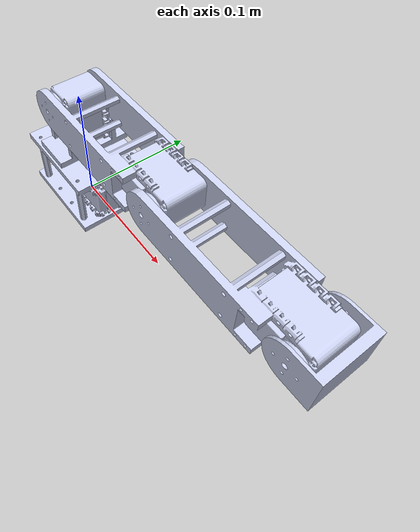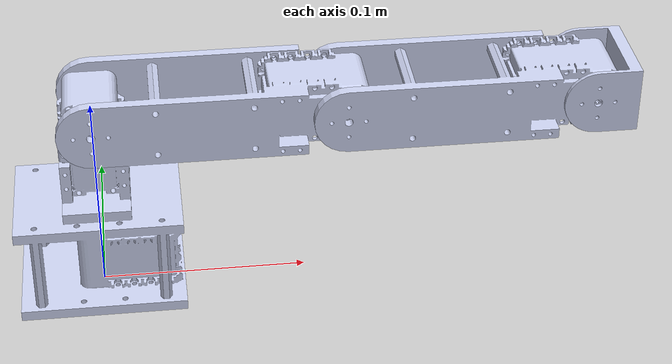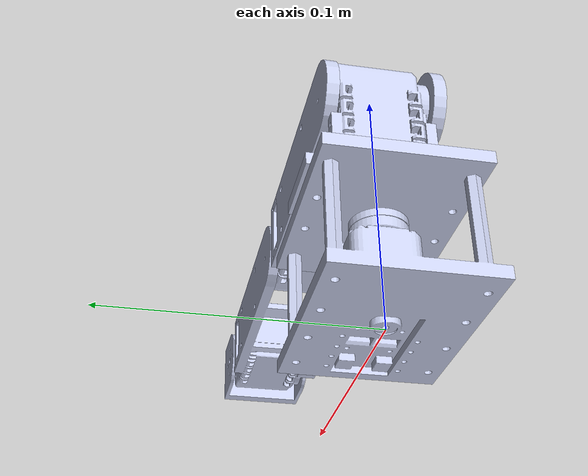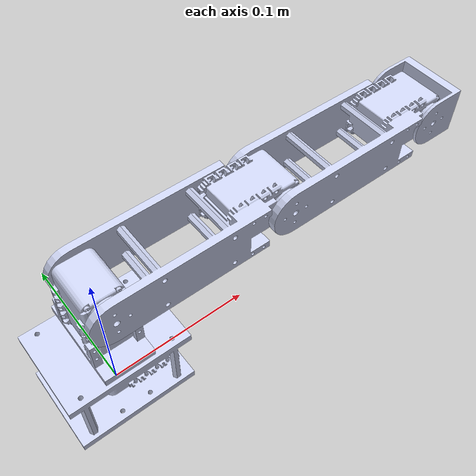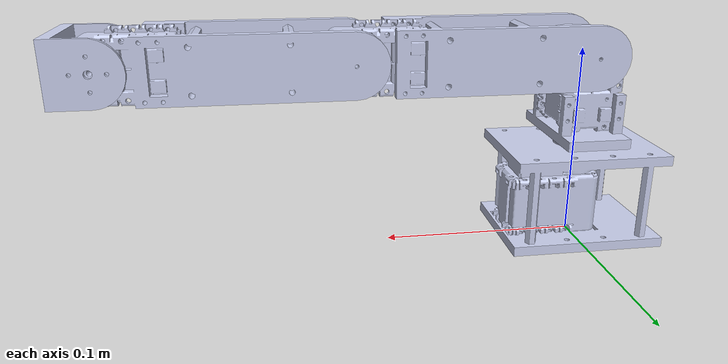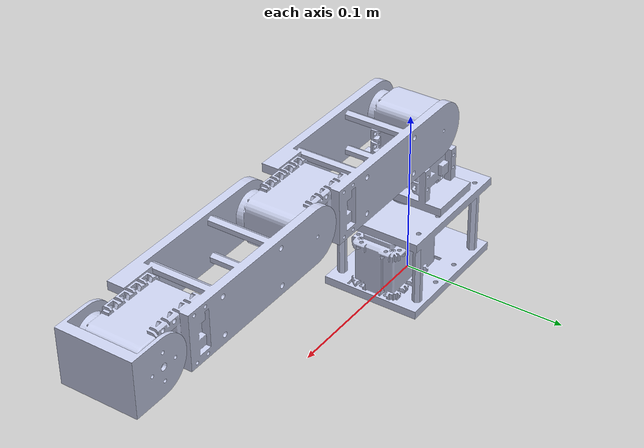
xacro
<?xml version="1.0"?>
<robot name="acps_bot" xmlns:xacro="http://ros.org/wiki/xacro">
  <xacro:include filename="$(find dynamixel_arm)/urdf/acps_bot.xacro" />
  <xacro:include filename="$(find dynamixel_arm)/urdf/acps_bot.ros2_control_gazebo.xacro" />

  <xacro:acps_bot/>

  <xacro:acps_bot_ros2_control_gazebo name="acps_bot_ros2_control_gazebo" />
</robot>

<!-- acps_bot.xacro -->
<robot xmlns:xacro="http://www.ros.org/wiki/xacro">
<xacro:macro name="acps_bot">
    <link name="world"/>
    <link
        name="base_link">
        <inertial>
        <origin
            xyz="0.0050632 -2.8932E-09 0.024787"
            rpy="0 0 0" />
        <mass
            value="0.090196" />
        <inertia
            ixx="1.7793E-05"
            ixy="-9.8445E-12"
            ixz="6.6333E-10"
            iyy="3.1931E-05"
            iyz="-6.3531E-13"
            izz="4.6413E-05" />
        </inertial>
        <visual>
        <origin
            xyz="0 0 0"
            rpy="0 0 0" />
        <geometry>
            <mesh
            filename="package://dynamixel_arm/meshes/base_link.STL" />
        </geometry>
        <material
            name="">
            <color
            rgba="0.79216 0.81961 0.93333 1" />
        </material>
        </visual>
        <collision>
        <origin
            xyz="0 0 0"
            rpy="0 0 0" />
        <geometry>
            <mesh
            filename="package://dynamixel_arm/meshes/base_link.STL" />
        </geometry>
        </collision>
    </link>
    <link
        name="link1">
        <inertial>
        <origin
            xyz="-4.8378E-09 -0.00096454 0.02552"
            rpy="0 0 0" />
        <mass
            value="0.05394" />
        <inertia
            ixx="1.235E-05"
            ixy="6.3531E-13"
            ixz="9.8445E-12"
            iyy="1.1336E-05"
            iyz="-3.2723E-08"
            izz="8.0276E-06" />
        </inertial>
        <visual>
        <origin
            xyz="0 0 0"
            rpy="0 0 0" />
        <geometry>
            <mesh
            filename="package://dynamixel_arm/meshes/link1.STL" />
        </geometry>
        <material
            name="">
            <color
            rgba="0.79216 0.81961 0.93333 1" />
        </material>
        </visual>
        <collision>
        <origin
            xyz="0 0 0"
            rpy="0 0 0" />
        <geometry>
            <mesh
            filename="package://dynamixel_arm/meshes/link1.STL" />
        </geometry>
        </collision>
    </link>

    <link
        name="link2">
        <inertial>
        <origin
            xyz="0.076862 3.2486E-09 0.0019947"
            rpy="0 0 0" />
        <mass
            value="0.080328" />
        <inertia
            ixx="7.0482E-06"
            ixy="-9.8445E-12"
            ixz="3.7071E-07"
            iyy="4.3452E-05"
            iyz="6.3531E-13"
            izz="4.7253E-05" />
        </inertial>
        <visual>
        <origin
            xyz="0 0 0"
            rpy="0 0 0" />
        <geometry>
            <mesh
            filename="package://dynamixel_arm/meshes/link2.STL" />
        </geometry>
        <material
            name="">
            <color
            rgba="0.79216 0.81961 0.93333 1" />
        </material>
        </visual>
        <collision>
        <origin
            xyz="0 0 0"
            rpy="0 0 0" />
        <geometry>
            <mesh
            filename="package://dynamixel_arm/meshes/link2.STL" />
        </geometry>
        </collision>
    </link>

    <link
        name="link3">
        <inertial>
        <origin
            xyz="0.076862 3.2486E-09 0.0020359"
            rpy="0 0 0" />
        <mass
            value="0.080328" />
        <inertia
            ixx="7.0482E-06"
            ixy="-9.8445E-12"
            ixz="3.7071E-07"
            iyy="4.3452E-05"
            iyz="6.3531E-13"
            izz="4.7253E-05" />
        </inertial>
        <visual>
        <origin
            xyz="0 0 0"
            rpy="0 0 0" />
        <geometry>
            <mesh
            filename="package://dynamixel_arm/meshes/link3.STL" />
        </geometry>
        <material
            name="">
            <color
            rgba="0.79216 0.81961 0.93333 1" />
        </material>
        </visual>
        <collision>
        <origin
            xyz="0 0 0"
            rpy="0 0 0" />
        <geometry>
            <mesh
            filename="package://dynamixel_arm/meshes/link3.STL" />
        </geometry>
        </collision>
    </link>

    <link
        name="link4">
        <inertial>
        <origin
            xyz="0.012363 -6.9389E-17 0.001"
            rpy="0 0 0" />
        <mass
            value="0.011748" />
        <inertia
            ixx="3.7944E-06"
            ixy="2.1774E-20"
            ixz="-1.5694E-21"
            iyy="3.709E-06"
            iyz="-1.7401E-20"
            izz="1.8647E-06" />
        </inertial>
        <visual>
        <origin
            xyz="0 0 0"
            rpy="0 0 0" />
        <geometry>
            <mesh
            filename="package://dynamixel_arm/meshes/link4.STL" />
        </geometry>
        <material
            name="">
            <color
            rgba="0.79216 0.81961 0.93333 1" />
        </material>
        </visual>
        <collision>
        <origin
            xyz="0 0 0"
            rpy="0 0 0" />
        <geometry>
            <mesh
            filename="package://dynamixel_arm/meshes/link4.STL" />
        </geometry>
        </collision>
    </link>
    <joint name="origin_to_joint1" type="fixed">
        <origin rpy="0 0 0" xyz="0 0 0"/>
        <parent link="world"/>
        <child link="base_link"/>
    </joint>
    <joint
        name="joint1"
        type="continuous">
        <origin
        xyz="0 0 0.0548"
        rpy="0 0 0" />
        <parent
        link="base_link" />
        <child
        link="link1" />
        <axis
        xyz="0 0 1" />
    </joint>
    <joint
        name="joint2"
        type="continuous">
        <origin
        xyz="0 0 0.04355"
        rpy="1.5708 0 0" />
        <parent
        link="link1" />
        <child
        link="link2" />
        <axis
        xyz="0 0 -1" />
    </joint>
    <joint
        name="joint3"
        type="continuous">
        <origin
        xyz="0.11855 0 0"
        rpy="0 0 0" />
        <parent
        link="link2" />
        <child
        link="link3" />
        <axis
        xyz="0 0 -1" />
    </joint>
    <joint
        name="joint4"
        type="continuous">
        <origin
        xyz="0.11855 0 0"
        rpy="0 0 0" />
        <parent
        link="link3" />
        <child
        link="link4" />
        <axis
        xyz="0 0 -1" />
    </joint>
    </xacro:macro>

</robot>
